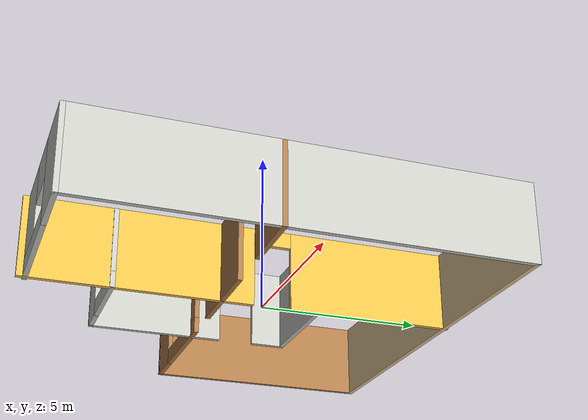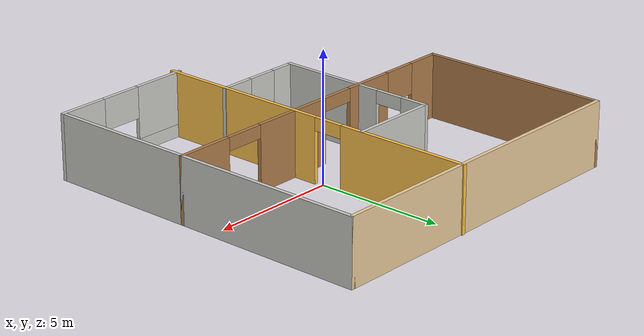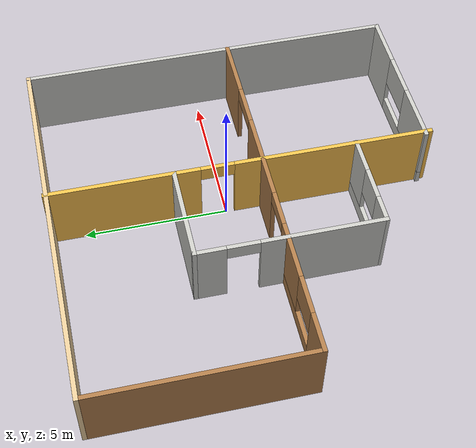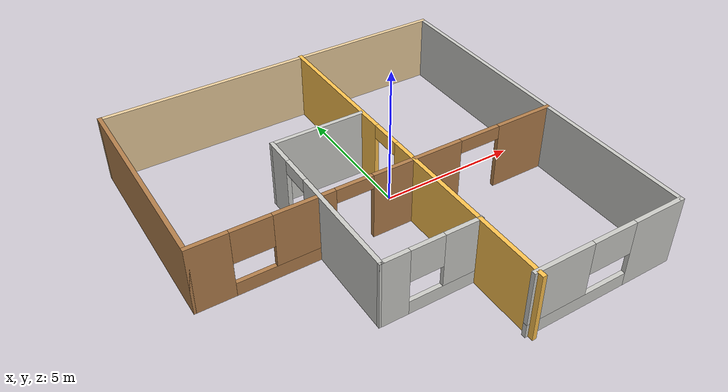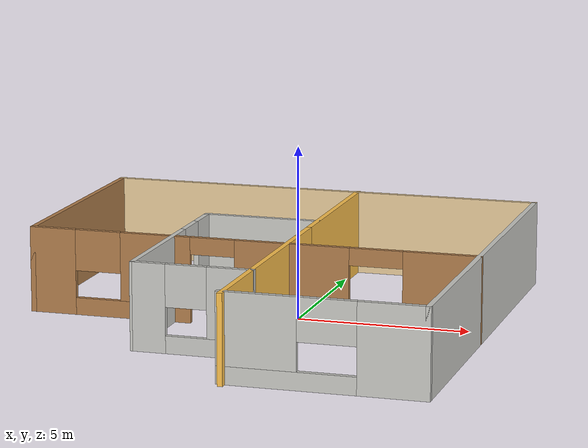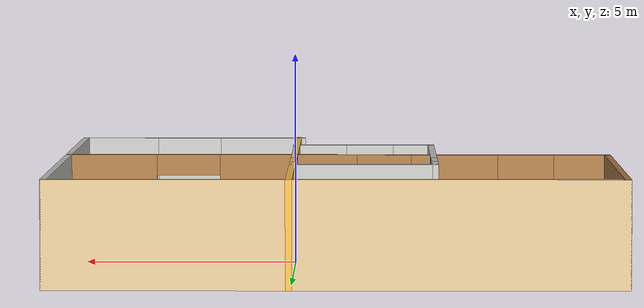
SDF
<?xml version='1.0'?>
<sdf version='1.6'>
  <model name='Robot_House'>
    <pose frame=''>-1.006 -0.55 0 0 -0 0</pose>
    <link name='Wall_0'>
      <collision name='Wall_0_Collision'>
        <geometry>
          <box>
            <size>13.25 0.15 2.5</size>
          </box>
        </geometry>
        <pose frame=''>0 0 1.25 0 -0 0</pose>
      </collision>
      <visual name='Wall_0_Visual'>
        <pose frame=''>0 0 1.25 0 -0 0</pose>
        <geometry>
          <box>
            <size>13.25 0.15 2.5</size>
          </box>
        </geometry>
        <material>
          <script>
            <uri>file://media/materials/scripts/gazebo.material</uri>
            <name>Gazebo/Grey</name>
          </script>
          <ambient>0.921569 0.807843 0.615686 1</ambient>
        </material>
        <meta>
          <layer>0</layer>
        </meta>
      </visual>
      <pose frame=''>-0 6.627 0 0 -0 0</pose>
    </link>
    <link name='Wall_1'>
      <collision name='Wall_1_Collision'>
        <geometry>
          <box>
            <size>13.263 0.15 2.5</size>
          </box>
        </geometry>
        <pose frame=''>0 0 1.25 0 -0 0</pose>
      </collision>
      <visual name='Wall_1_Visual'>
        <pose frame=''>0 0 1.25 0 -0 0</pose>
        <geometry>
          <box>
            <size>13.263 0.15 2.5</size>
          </box>
        </geometry>
        <material>
          <script>
            <uri>file://media/materials/scripts/gazebo.material</uri>
            <name>Gazebo/CeilingTiled</name>
          </script>
          <ambient>0.921569 0.807843 0.615686 1</ambient>
        </material>
        <meta>
          <layer>0</layer>
        </meta>
      </visual>
      <pose frame=''>6.55 0.0705 0 0 -0 -1.5708</pose>
    </link>
    <link name='Wall_20'>
      <pose frame=''>1.055 0 0 0 -0 1.5708</pose>
      <visual name='Wall_20_Visual_0'>
        <pose frame=''>-3.24261 0 1.25 0 -0 0</pose>
        <geometry>
          <box>
            <size>7.01478 0.15 2.5</size>
          </box>
        </geometry>
        <material>
          <script>
            <uri>file://media/materials/scripts/gazebo.material</uri>
            <name>Gazebo/Grey</name>
          </script>
          <ambient>1 0.764706 0.305882 1</ambient>
        </material>
        <meta>
          <layer>0</layer>
        </meta>
      </visual>
      <collision name='Wall_20_Collision_0'>
        <geometry>
          <box>
            <size>7.01478 0.15 2.5</size>
          </box>
        </geometry>
        <pose frame=''>-3.24261 0 1.25 0 -0 0</pose>
      </collision>
      <visual name='Wall_20_Visual_1'>
        <pose frame=''>4.08964 0 1.25 0 -0 0</pose>
        <geometry>
          <box>
            <size>5.32073 0.15 2.5</size>
          </box>
        </geometry>
        <material>
          <script>
            <uri>file://media/materials/scripts/gazebo.material</uri>
            <name>Gazebo/Grey</name>
          </script>
          <ambient>1 0.764706 0.305882 1</ambient>
        </material>
        <meta>
          <layer>0</layer>
        </meta>
      </visual>
      <collision name='Wall_20_Collision_1'>
        <geometry>
          <box>
            <size>5.32073 0.15 2.5</size>
          </box>
        </geometry>
        <pose frame=''>4.08964 0 1.25 0 -0 0</pose>
      </collision>
      <visual name='Wall_20_Visual_2'>
        <pose frame=''>0.847025 0 2.25 0 -0 0</pose>
        <geometry>
          <box>
            <size>1.1645 0.15 0.5</size>
          </box>
        </geometry>
        <material>
          <script>
            <uri>file://media/materials/scripts/gazebo.material</uri>
            <name>Gazebo/Grey</name>
          </script>
          <ambient>1 0.764706 0.305882 1</ambient>
        </material>
        <meta>
          <layer>0</layer>
        </meta>
      </visual>
      <collision name='Wall_20_Collision_2'>
        <geometry>
          <box>
            <size>1.1645 0.15 0.5</size>
          </box>
        </geometry>
        <pose frame=''>0.847025 0 2.25 0 -0 0</pose>
      </collision>
    </link>
    <link name='Wall_22'>
      <pose frame=''>-2.318 -0.839 0 0 -0 -1.5708</pose>
      <visual name='Wall_22_Visual_0'>
        <pose frame=''>-2.68981 0 1.25 0 -0 0</pose>
        <geometry>
          <box>
            <size>1.12039 0.15 2.5</size>
          </box>
        </geometry>
        <material>
          <script>
            <uri>file://media/materials/scripts/gazebo.material</uri>
            <name>Gazebo/CeilingTiled</name>
          </script>
          <ambient>0.921569 0.807843 0.615686 1</ambient>
        </material>
        <meta>
          <layer>0</layer>
        </meta>
      </visual>
      <collision name='Wall_22_Collision_0'>
        <geometry>
          <box>
            <size>1.12039 0.15 2.5</size>
          </box>
        </geometry>
        <pose frame=''>-2.68981 0 1.25 0 -0 0</pose>
      </collision>
      <visual name='Wall_22_Visual_1'>
        <pose frame=''>1.11619 0 1.25 0 -0 0</pose>
        <geometry>
          <box>
            <size>4.26761 0.15 2.5</size>
          </box>
        </geometry>
        <material>
          <script>
            <uri>file://media/materials/scripts/gazebo.material</uri>
            <name>Gazebo/CeilingTiled</name>
          </script>
          <ambient>0.921569 0.807843 0.615686 1</ambient>
        </material>
        <meta>
          <layer>0</layer>
        </meta>
      </visual>
      <collision name='Wall_22_Collision_1'>
        <geometry>
          <box>
            <size>4.26761 0.15 2.5</size>
          </box>
        </geometry>
        <pose frame=''>1.11619 0 1.25 0 -0 0</pose>
      </collision>
      <visual name='Wall_22_Visual_2'>
        <pose frame=''>-1.57361 0 2.25 0 -0 0</pose>
        <geometry>
          <box>
            <size>1.112 0.15 0.5</size>
          </box>
        </geometry>
        <material>
          <script>
            <uri>file://media/materials/scripts/gazebo.material</uri>
            <name>Gazebo/CeilingTiled</name>
          </script>
          <ambient>0.921569 0.807843 0.615686 1</ambient>
        </material>
        <meta>
          <layer>0</layer>
        </meta>
      </visual>
      <collision name='Wall_22_Collision_2'>
        <geometry>
          <box>
            <size>1.112 0.15 0.5</size>
          </box>
        </geometry>
        <pose frame=''>-1.57361 0 2.25 0 -0 0</pose>
      </collision>
    </link>
    <link name='Wall_23'>
      <pose frame=''>-0.62 -4.0195 0 0 -0 -0.003239</pose>
      <visual name='Wall_23_Visual_0'>
        <pose frame=''>-1.26198 0 1.25 0 -0 0</pose>
        <geometry>
          <box>
            <size>1.02235 0.15 2.5</size>
          </box>
        </geometry>
        <material>
          <script>
            <uri>file://media/materials/scripts/gazebo.material</uri>
            <name>Gazebo/CeilingTiled</name>
          </script>
          <ambient>0.435294 0.796078 0.67451 1</ambient>
        </material>
        <meta>
          <layer>0</layer>
        </meta>
      </visual>
      <collision name='Wall_23_Collision_0'>
        <geometry>
          <box>
            <size>1.02235 0.15 2.5</size>
          </box>
        </geometry>
        <pose frame=''>-1.26198 0 1.25 0 -0 0</pose>
      </collision>
      <visual name='Wall_23_Visual_1'>
        <pose frame=''>0.511177 0 0.25 0 -0 0</pose>
        <geometry>
          <box>
            <size>2.52396 0.15 0.5</size>
          </box>
        </geometry>
        <material>
          <script>
            <uri>file://media/materials/scripts/gazebo.material</uri>
            <name>Gazebo/CeilingTiled</name>
          </script>
          <ambient>0.435294 0.796078 0.67451 1</ambient>
        </material>
        <meta>
          <layer>0</layer>
        </meta>
      </visual>
      <collision name='Wall_23_Collision_1'>
        <geometry>
          <box>
            <size>2.52396 0.15 0.5</size>
          </box>
        </geometry>
        <pose frame=''>0.511177 0 0.25 0 -0 0</pose>
      </collision>
      <visual name='Wall_23_Visual_2'>
        <pose frame=''>1.10093 0 1.5 0 -0 0</pose>
        <geometry>
          <box>
            <size>1.34446 0.15 2</size>
          </box>
        </geometry>
        <material>
          <script>
            <uri>file://media/materials/scripts/gazebo.material</uri>
            <name>Gazebo/CeilingTiled</name>
          </script>
          <ambient>0.435294 0.796078 0.67451 1</ambient>
        </material>
        <meta>
          <layer>0</layer>
        </meta>
      </visual>
      <collision name='Wall_23_Collision_2'>
        <geometry>
          <box>
            <size>1.34446 0.15 2</size>
          </box>
        </geometry>
        <pose frame=''>1.10093 0 1.5 0 -0 0</pose>
      </collision>
      <visual name='Wall_23_Visual_3'>
        <pose frame=''>-0.161052 0 1.9 0 -0 0</pose>
        <geometry>
          <box>
            <size>1.1795 0.15 1.2</size>
          </box>
        </geometry>
        <material>
          <script>
            <uri>file://media/materials/scripts/gazebo.material</uri>
            <name>Gazebo/CeilingTiled</name>
          </script>
          <ambient>0.435294 0.796078 0.67451 1</ambient>
        </material>
        <meta>
          <layer>0</layer>
        </meta>
      </visual>
      <collision name='Wall_23_Collision_3'>
        <geometry>
          <box>
            <size>1.1795 0.15 1.2</size>
          </box>
        </geometry>
        <pose frame=''>-0.161052 0 1.9 0 -0 0</pose>
      </collision>
    </link>
    <link name='Wall_36'>
      <collision name='Wall_36_Collision'>
        <geometry>
          <box>
            <size>3.5 0.15 2.5</size>
          </box>
        </geometry>
        <pose frame=''>0 0 1.25 0 -0 0</pose>
      </collision>
      <visual name='Wall_36_Visual'>
        <pose frame=''>0 0 1.25 0 -0 0</pose>
        <geometry>
          <box>
            <size>3.5 0.15 2.5</size>
          </box>
        </geometry>
        <material>
          <script>
            <uri>file://media/materials/scripts/gazebo.material</uri>
            <name>Gazebo/CeilingTiled</name>
          </script>
          <ambient>0.921569 0.807843 0.615686 1</ambient>
        </material>
        <meta>
          <layer>0</layer>
        </meta>
      </visual>
      <pose frame=''>-0.643 2.336 0 0 -0 0</pose>
    </link>
    <link name='Wall_38'>
      <pose frame=''>3.75 -6.486 0 0 -0 3.14159</pose>
      <visual name='Wall_38_Visual_0'>
        <pose frame=''>-1.9017 0 1.25 0 -0 0</pose>
        <geometry>
          <box>
            <size>1.9466 0.15 2.5</size>
          </box>
        </geometry>
        <material>
          <script>
            <uri>file://media/materials/scripts/gazebo.material</uri>
            <name>Gazebo/CeilingTiled</name>
          </script>
          <ambient>1 0.764706 0.305882 1</ambient>
        </material>
        <meta>
          <layer>0</layer>
        </meta>
      </visual>
      <collision name='Wall_38_Collision_0'>
        <geometry>
          <box>
            <size>1.9466 0.15 2.5</size>
          </box>
        </geometry>
        <pose frame=''>-1.9017 0 1.25 0 -0 0</pose>
      </collision>
      <visual name='Wall_38_Visual_1'>
        <pose frame=''>0.973302 0 0.25 0 -0 0</pose>
        <geometry>
          <box>
            <size>3.8034 0.15 0.5</size>
          </box>
        </geometry>
        <material>
          <script>
            <uri>file://media/materials/scripts/gazebo.material</uri>
            <name>Gazebo/CeilingTiled</name>
          </script>
          <ambient>1 0.764706 0.305882 1</ambient>
        </material>
        <meta>
          <layer>0</layer>
        </meta>
      </visual>
      <collision name='Wall_38_Collision_1'>
        <geometry>
          <box>
            <size>3.8034 0.15 0.5</size>
          </box>
        </geometry>
        <pose frame=''>0.973302 0 0.25 0 -0 0</pose>
      </collision>
      <visual name='Wall_38_Visual_2'>
        <pose frame=''>1.7783 0 1.5 0 -0 0</pose>
        <geometry>
          <box>
            <size>2.1934 0.15 2</size>
          </box>
        </geometry>
        <material>
          <script>
            <uri>file://media/materials/scripts/gazebo.material</uri>
            <name>Gazebo/CeilingTiled</name>
          </script>
          <ambient>1 0.764706 0.305882 1</ambient>
        </material>
        <meta>
          <layer>0</layer>
        </meta>
      </visual>
      <collision name='Wall_38_Collision_2'>
        <geometry>
          <box>
            <size>2.1934 0.15 2</size>
          </box>
        </geometry>
        <pose frame=''>1.7783 0 1.5 0 -0 0</pose>
      </collision>
      <visual name='Wall_38_Visual_3'>
        <pose frame=''>-0.123395 0 1.9 0 -0 0</pose>
        <geometry>
          <box>
            <size>1.61 0.15 1.2</size>
          </box>
        </geometry>
        <material>
          <script>
            <uri>file://media/materials/scripts/gazebo.material</uri>
            <name>Gazebo/CeilingTiled</name>
          </script>
          <ambient>1 0.764706 0.305882 1</ambient>
        </material>
        <meta>
          <layer>0</layer>
        </meta>
      </visual>
      <collision name='Wall_38_Collision_3'>
        <geometry>
          <box>
            <size>1.61 0.15 1.2</size>
          </box>
        </geometry>
        <pose frame=''>-0.123395 0 1.9 0 -0 0</pose>
      </collision>
    </link>
    <link name='Wall_4'>
      <collision name='Wall_4_Collision'>
        <geometry>
          <box>
            <size>7.5 0.15 2.5</size>
          </box>
        </geometry>
        <pose frame=''>0 0 1.25 0 -0 0</pose>
      </collision>
      <visual name='Wall_4_Visual'>
        <pose frame=''>0 0 1.25 0 -0 0</pose>
        <geometry>
          <box>
            <size>7.5 0.15 2.5</size>
          </box>
        </geometry>
        <material>
          <script>
            <uri>file://media/materials/scripts/gazebo.material</uri>
            <name>Gazebo/Wood</name>
          </script>
          <ambient>1 1 1 1</ambient>
        </material>
        <meta>
          <layer>0</layer>
        </meta>
      </visual>
      <pose frame=''>-6.55 2.952 0 0 -0 -1.5708</pose>
    </link>
    <link name='Wall_5'>
      <pose frame=''>-0 -0.723 0 0 -0 0</pose>
      <visual name='Wall_5_Visual_0'>
        <pose frame=''>-5.93459 0 1.25 0 -0 0</pose>
        <geometry>
          <box>
            <size>1.38081 0.15 2.5</size>
          </box>
        </geometry>
        <material>
          <script>
            <uri>file://media/materials/scripts/gazebo.material</uri>
            <name>Gazebo/Wood</name>
          </script>
          <ambient>1 1 1 1</ambient>
        </material>
        <meta>
          <layer>0</layer>
        </meta>
      </visual>
      <collision name='Wall_5_Collision_0'>
        <geometry>
          <box>
            <size>1.38081 0.15 2.5</size>
          </box>
        </geometry>
        <pose frame=''>-5.93459 0 1.25 0 -0 0</pose>
      </collision>
      <visual name='Wall_5_Visual_1'>
        <pose frame=''>1.19519 0 1.25 0 -0 0</pose>
        <geometry>
          <box>
            <size>3.33861 0.15 2.5</size>
          </box>
        </geometry>
        <material>
          <script>
            <uri>file://media/materials/scripts/gazebo.material</uri>
            <name>Gazebo/Wood</name>
          </script>
          <ambient>1 1 1 1</ambient>
        </material>
        <meta>
          <layer>0</layer>
        </meta>
      </visual>
      <collision name='Wall_5_Collision_1'>
        <geometry>
          <box>
            <size>3.33861 0.15 2.5</size>
          </box>
        </geometry>
        <pose frame=''>1.19519 0 1.25 0 -0 0</pose>
      </collision>
      <visual name='Wall_5_Visual_2'>
        <pose frame=''>5.51215 0 1.25 0 -0 0</pose>
        <geometry>
          <box>
            <size>2.2257 0.15 2.5</size>
          </box>
        </geometry>
        <material>
          <script>
            <uri>file://media/materials/scripts/gazebo.material</uri>
            <name>Gazebo/Wood</name>
          </script>
          <ambient>1 1 1 1</ambient>
        </material>
        <meta>
          <layer>0</layer>
        </meta>
      </visual>
      <collision name='Wall_5_Collision_2'>
        <geometry>
          <box>
            <size>2.2257 0.15 2.5</size>
          </box>
        </geometry>
        <pose frame=''>5.51215 0 1.25 0 -0 0</pose>
      </collision>
      <visual name='Wall_5_Visual_3'>
        <pose frame=''>-3.51414 0 0.25 0 -0 0</pose>
        <geometry>
          <box>
            <size>3.4601 0.15 0.5</size>
          </box>
        </geometry>
        <material>
          <script>
            <uri>file://media/materials/scripts/gazebo.material</uri>
            <name>Gazebo/Wood</name>
          </script>
          <ambient>1 1 1 1</ambient>
        </material>
        <meta>
          <layer>0</layer>
        </meta>
      </visual>
      <collision name='Wall_5_Collision_3'>
        <geometry>
          <box>
            <size>3.4601 0.15 0.5</size>
          </box>
        </geometry>
        <pose frame=''>-3.51414 0 0.25 0 -0 0</pose>
      </collision>
      <visual name='Wall_5_Visual_4'>
        <pose frame=''>-2.83264 0 1.5 0 -0 0</pose>
        <geometry>
          <box>
            <size>2.0971 0.15 2</size>
          </box>
        </geometry>
        <material>
          <script>
            <uri>file://media/materials/scripts/gazebo.material</uri>
            <name>Gazebo/Wood</name>
          </script>
          <ambient>1 1 1 1</ambient>
        </material>
        <meta>
          <layer>0</layer>
        </meta>
      </visual>
      <collision name='Wall_5_Collision_4'>
        <geometry>
          <box>
            <size>2.0971 0.15 2</size>
          </box>
        </geometry>
        <pose frame=''>-2.83264 0 1.5 0 -0 0</pose>
      </collision>
      <visual name='Wall_5_Visual_5'>
        <pose frame=''>-4.56269 0 1.9 0 -0 0</pose>
        <geometry>
          <box>
            <size>1.363 0.15 1.2</size>
          </box>
        </geometry>
        <material>
          <script>
            <uri>file://media/materials/scripts/gazebo.material</uri>
            <name>Gazebo/Wood</name>
          </script>
          <ambient>1 1 1 1</ambient>
        </material>
        <meta>
          <layer>0</layer>
        </meta>
      </visual>
      <collision name='Wall_5_Collision_5'>
        <geometry>
          <box>
            <size>1.363 0.15 1.2</size>
          </box>
        </geometry>
        <pose frame=''>-4.56269 0 1.9 0 -0 0</pose>
      </collision>
      <visual name='Wall_5_Visual_6'>
        <pose frame=''>3.6319 0 2.25 0 -0 0</pose>
        <geometry>
          <box>
            <size>1.5348 0.15 0.5</size>
          </box>
        </geometry>
        <material>
          <script>
            <uri>file://media/materials/scripts/gazebo.material</uri>
            <name>Gazebo/Wood</name>
          </script>
          <ambient>1 1 1 1</ambient>
        </material>
        <meta>
          <layer>0</layer>
        </meta>
      </visual>
      <collision name='Wall_5_Collision_6'>
        <geometry>
          <box>
            <size>1.5348 0.15 0.5</size>
          </box>
        </geometry>
        <pose frame=''>3.6319 0 2.25 0 -0 0</pose>
      </collision>
      <visual name='Wall_5_Visual_7'>
        <pose frame=''>-1.1291 0 2.25 0 -0 0</pose>
        <geometry>
          <box>
            <size>1.30997 0.15 0.5</size>
          </box>
        </geometry>
        <material>
          <script>
            <uri>file://media/materials/scripts/gazebo.material</uri>
            <name>Gazebo/Wood</name>
          </script>
          <ambient>1 1 1 1</ambient>
        </material>
        <meta>
          <layer>0</layer>
        </meta>
      </visual>
      <collision name='Wall_5_Collision_7'>
        <geometry>
          <box>
            <size>1.30997 0.15 0.5</size>
          </box>
        </geometry>
        <pose frame=''>-1.1291 0 2.25 0 -0 0</pose>
      </collision>
    </link>
    <static>1</static>
  </model>
</sdf>
